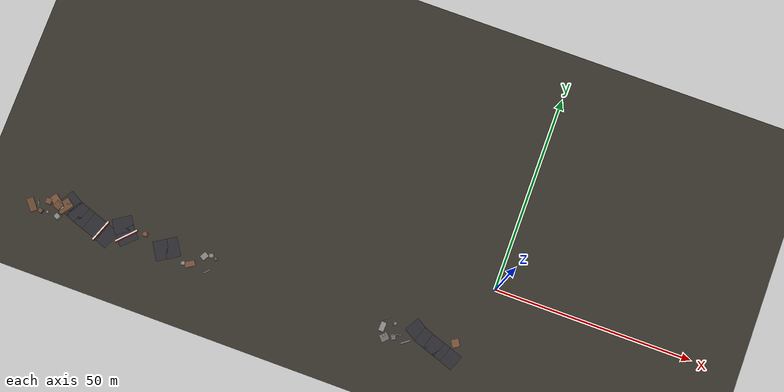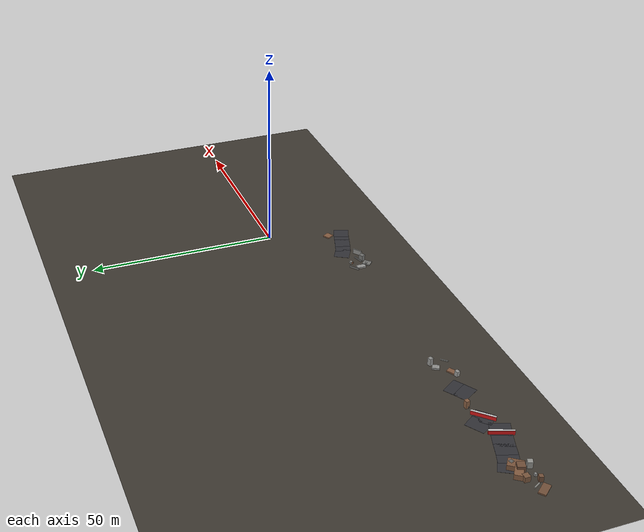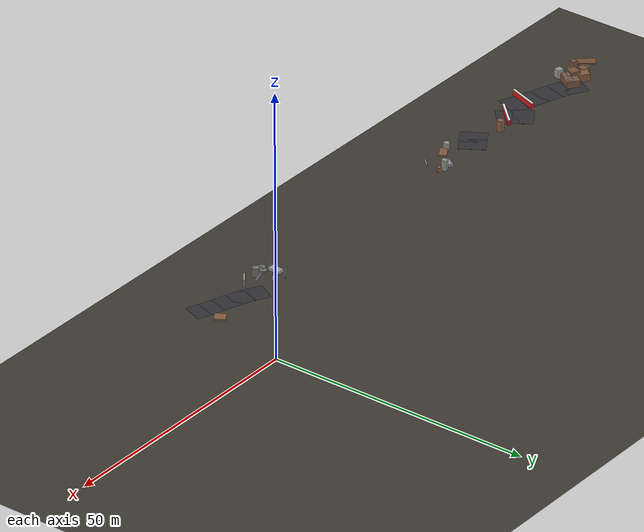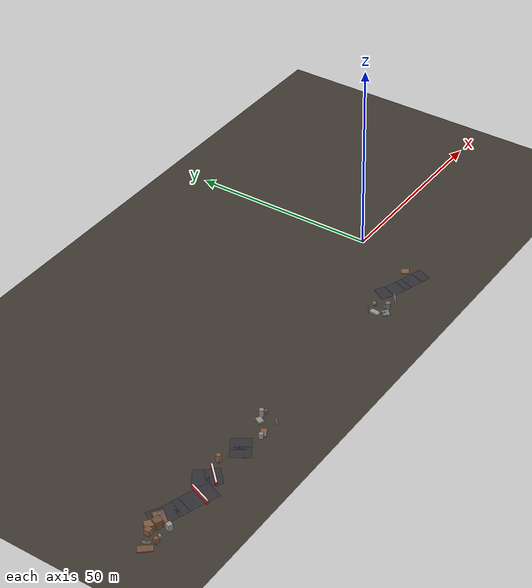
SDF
<sdf version="1.6">
 <world name="navitas_arena">
  <model name="ground_plane">
   <static>true</static>
   <link name="link">
    <collision name="collision">
     <geometry><plane><normal>0 0 1</normal><size>400 400</size></plane></geometry>
     <surface><friction><ode><mu>0.620</mu><mu2>0.620</mu2></ode></friction></surface>
    </collision>
    <visual name="visual">
     <cast_shadows>false</cast_shadows>
     <geometry><plane><normal>0 0 1</normal><size>400 400</size></plane></geometry>
     <material><ambient>0.250 0.230 0.200 1</ambient><diffuse>0.250 0.230 0.200 1</diffuse></material>
    </visual>
   </link>
  </model>
  <model name="road_kolay_1_2">
   <static>true</static>
   <pose>-93.854 -20.087 0.040 0 0 2.760</pose>
   <link name="link">
    <collision name="col"><geometry><box><size>4.055 4.920 0.020</size></box></geometry></collision>
    <visual name="vis">
     <geometry><box><size>4.055 4.920 0.020</size></box></geometry>
     <material><ambient>0.20 0.20 0.22 1</ambient><diffuse>0.20 0.20 0.22 1</diffuse></material>
    </visual>
   </link>
  </model>
  <model name="road_kolay_1_3">
   <static>true</static>
   <pose>-97.048 -18.901 0.040 0 0 2.808</pose>
   <link name="link">
    <collision name="col"><geometry><box><size>4.562 4.920 0.020</size></box></geometry></collision>
    <visual name="vis">
     <geometry><box><size>4.562 4.920 0.020</size></box></geometry>
     <material><ambient>0.20 0.20 0.22 1</ambient><diffuse>0.20 0.20 0.22 1</diffuse></material>
    </visual>
   </link>
  </model>
  <model name="road_kolay_1_4">
   <static>true</static>
   <pose>-100.051 -17.886 0.040 0 0 2.825</pose>
   <link name="link">
    <collision name="col"><geometry><box><size>3.578 4.920 0.020</size></box></geometry></collision>
    <visual name="vis">
     <geometry><box><size>3.578 4.920 0.020</size></box></geometry>
     <material><ambient>0.20 0.20 0.22 1</ambient><diffuse>0.20 0.20 0.22 1</diffuse></material>
    </visual>
   </link>
  </model>
  <model name="road_kolay_1_5">
   <static>true</static>
   <pose>-102.527 -17.017 0.040 0 0 2.783</pose>
   <link name="link">
    <collision name="col"><geometry><box><size>3.471 4.920 0.020</size></box></geometry></collision>
    <visual name="vis">
     <geometry><box><size>3.471 4.920 0.020</size></box></geometry>
     <material><ambient>0.20 0.20 0.22 1</ambient><diffuse>0.20 0.20 0.22 1</diffuse></material>
    </visual>
   </link>
  </model>
  <model name="road_kolay_1_6">
   <static>true</static>
   <pose>-105.099 -15.783 0.040 0 0 2.622</pose>
   <link name="link">
    <collision name="col"><geometry><box><size>4.053 4.920 0.020</size></box></geometry></collision>
    <visual name="vis">
     <geometry><box><size>4.053 4.920 0.020</size></box></geometry>
     <material><ambient>0.20 0.20 0.22 1</ambient><diffuse>0.20 0.20 0.22 1</diffuse></material>
    </visual>
   </link>
  </model>
  <model name="road_kolay_2_1">
   <static>true</static>
   <pose>-89.084 -18.484 0.040 0 0 2.331</pose>
   <link name="link">
    <collision name="col"><geometry><box><size>3.704 4.920 0.020</size></box></geometry></collision>
    <visual name="vis">
     <geometry><box><size>3.704 4.920 0.020</size></box></geometry>
     <material><ambient>0.20 0.20 0.22 1</ambient><diffuse>0.20 0.20 0.22 1</diffuse></material>
    </visual>
   </link>
  </model>
  <model name="road_kolay_2_2">
   <static>true</static>
   <pose>-90.859 -16.234 0.040 0 0 2.151</pose>
   <link name="link">
    <collision name="col"><geometry><box><size>3.851 4.920 0.020</size></box></geometry></collision>
    <visual name="vis">
     <geometry><box><size>3.851 4.920 0.020</size></box></geometry>
     <material><ambient>0.20 0.20 0.22 1</ambient><diffuse>0.20 0.20 0.22 1</diffuse></material>
    </visual>
   </link>
  </model>
  <model name="road_kolay_3_2">
   <static>true</static>
   <pose>-79.824 -18.833 0.040 0 0 0.547</pose>
   <link name="link">
    <collision name="col"><geometry><box><size>3.463 4.920 0.020</size></box></geometry></collision>
    <visual name="vis">
     <geometry><box><size>3.463 4.920 0.020</size></box></geometry>
     <material><ambient>0.20 0.20 0.22 1</ambient><diffuse>0.20 0.20 0.22 1</diffuse></material>
    </visual>
   </link>
  </model>
  <model name="road_kolay_3_3">
   <static>true</static>
   <pose>-77.616 -17.444 0.040 0 0 0.575</pose>
   <link name="link">
    <collision name="col"><geometry><box><size>3.554 4.920 0.020</size></box></geometry></collision>
    <visual name="vis">
     <geometry><box><size>3.554 4.920 0.020</size></box></geometry>
     <material><ambient>0.20 0.20 0.22 1</ambient><diffuse>0.20 0.20 0.22 1</diffuse></material>
    </visual>
   </link>
  </model>
  <model name="bar_kolay_1">
   <static>true</static>
   <pose>-95.318 -19.500 0.500 0 0 4.353</pose>
   <link name="link">
    <collision name="col"><geometry><box><size>5.920 0.500 1.000</size></box></geometry></collision>
    <visual name="vis">
     <geometry><box><size>5.920 0.500 1.000</size></box></geometry>
     <material><ambient>0.85 0.10 0.10 1</ambient><diffuse>0.85 0.10 0.10 1</diffuse></material>
    </visual>
   </link>
  </model>
  <model name="bar_kolay_1b">
   <static>true</static>
   <pose>-95.318 -19.500 1.000 0 0 4.353</pose>
   <link name="link">
    <collision name="col"><geometry><box><size>5.920 0.400 0.300</size></box></geometry></collision>
    <visual name="vis">
     <geometry><box><size>5.920 0.400 0.300</size></box></geometry>
     <material><ambient>0.95 0.95 0.95 1</ambient><diffuse>0.95 0.95 0.95 1</diffuse></material>
    </visual>
   </link>
  </model>
  <model name="blk_kolay_1_0_0">
   <static>true</static>
   <pose>-105.794 -16.909 0.675 0 0 0.937</pose>
   <link name="link">
    <collision name="col"><geometry><box><size>3.640 2.537 1.350</size></box></geometry></collision>
    <visual name="vis">
     <geometry><box><size>3.640 2.537 1.350</size></box></geometry>
     <material><ambient>0.49 0.34 0.24 1</ambient><diffuse>0.49 0.34 0.24 1</diffuse></material>
    </visual>
   </link>
  </model>
  <model name="blk_kolay_1_0_1">
   <static>true</static>
   <pose>-108.064 -16.394 0.675 0 0 2.525</pose>
   <link name="link">
    <collision name="col"><geometry><box><size>3.129 1.948 1.350</size></box></geometry></collision>
    <visual name="vis">
     <geometry><box><size>3.129 1.948 1.350</size></box></geometry>
     <material><ambient>0.53 0.37 0.26 1</ambient><diffuse>0.53 0.37 0.26 1</diffuse></material>
    </visual>
   </link>
  </model>
  <model name="blk_kolay_1_0_2">
   <static>true</static>
   <pose>-106.714 -17.453 0.803 0 0 0.864</pose>
   <link name="link">
    <collision name="col"><geometry><box><size>1.532 1.532 1.606</size></box></geometry></collision>
    <visual name="vis">
     <geometry><box><size>1.532 1.532 1.606</size></box></geometry>
     <material><ambient>0.58 0.58 0.57 1</ambient><diffuse>0.58 0.58 0.57 1</diffuse></material>
    </visual>
   </link>
  </model>
  <model name="blk_kolay_1_0_3">
   <static>true</static>
   <pose>-107.128 -17.293 1.004 0 0 1.210</pose>
   <link name="link">
    <collision name="col"><geometry><box><size>1.865 1.865 2.009</size></box></geometry></collision>
    <visual name="vis">
     <geometry><box><size>1.865 1.865 2.009</size></box></geometry>
     <material><ambient>0.46 0.32 0.23 1</ambient><diffuse>0.46 0.32 0.23 1</diffuse></material>
    </visual>
   </link>
  </model>
  <model name="blk_kolay_1_0_5">
   <static>true</static>
   <pose>-104.972 -16.290 0.675 0 0 1.908</pose>
   <link name="link">
    <collision name="col"><geometry><box><size>0.911 0.911 1.350</size></box></geometry></collision>
    <visual name="vis">
     <geometry><box><size>0.911 0.911 1.350</size></box></geometry>
     <material><ambient>0.41 0.41 0.40 1</ambient><diffuse>0.41 0.41 0.40 1</diffuse></material>
    </visual>
   </link>
  </model>
  <model name="bar_kolay_2">
   <static>true</static>
   <pose>-88.970 -18.504 0.500 0 0 3.948</pose>
   <link name="link">
    <collision name="col"><geometry><box><size>5.920 0.500 1.000</size></box></geometry></collision>
    <visual name="vis">
     <geometry><box><size>5.920 0.500 1.000</size></box></geometry>
     <material><ambient>0.85 0.10 0.10 1</ambient><diffuse>0.85 0.10 0.10 1</diffuse></material>
    </visual>
   </link>
  </model>
  <model name="bar_kolay_2b">
   <static>true</static>
   <pose>-88.970 -18.504 1.000 0 0 3.948</pose>
   <link name="link">
    <collision name="col"><geometry><box><size>5.920 0.400 0.300</size></box></geometry></collision>
    <visual name="vis">
     <geometry><box><size>5.920 0.400 0.300</size></box></geometry>
     <material><ambient>0.95 0.95 0.95 1</ambient><diffuse>0.95 0.95 0.95 1</diffuse></material>
    </visual>
   </link>
  </model>
  <model name="deb_kolay_31">
   <static>true</static>
   <pose>-69.338 -16.636 0.248 0 0 1.062</pose>
   <link name="link">
    <collision name="col"><geometry><box><size>1.803 1.399 0.496</size></box></geometry></collision>
    <visual name="vis">
     <geometry><box><size>1.803 1.399 0.496</size></box></geometry>
     <material><ambient>0.58 0.58 0.57 1</ambient><diffuse>0.58 0.58 0.57 1</diffuse></material>
    </visual>
   </link>
  </model>
  <model name="deb_kolay_36">
   <static>true</static>
   <pose>-109.332 -19.619 0.330 0 0 0.052</pose>
   <link name="link">
    <collision name="col"><geometry><box><size>0.570 0.570 0.661</size></box></geometry></collision>
    <visual name="vis">
     <geometry><box><size>0.570 0.570 0.661</size></box></geometry>
     <material><ambient>0.56 0.56 0.55 1</ambient><diffuse>0.56 0.56 0.55 1</diffuse></material>
    </visual>
   </link>
  </model>
  <model name="deb_kolay_48">
   <static>true</static>
   <pose>-106.480 -19.882 0.819 0 0 1.182</pose>
   <link name="link">
    <collision name="col"><geometry><box><size>1.207 1.207 1.639</size></box></geometry></collision>
    <visual name="vis">
     <geometry><box><size>1.207 1.207 1.639</size></box></geometry>
     <material><ambient>0.60 0.60 0.58 1</ambient><diffuse>0.60 0.60 0.58 1</diffuse></material>
    </visual>
   </link>
  </model>
  <model name="deb_kolay_59">
   <static>true</static>
   <pose>-113.701 -19.203 0.170 0 0 2.259</pose>
   <link name="link">
    <collision name="col"><geometry><box><size>3.441 1.771 0.340</size></box></geometry></collision>
    <visual name="vis">
     <geometry><box><size>3.441 1.771 0.340</size></box></geometry>
     <material><ambient>0.46 0.32 0.23 1</ambient><diffuse>0.46 0.32 0.23 1</diffuse></material>
    </visual>
   </link>
  </model>
  <model name="deb_kolay_80">
   <static>true</static>
   <pose>-84.674 -16.614 1.017 0 0 1.670</pose>
   <link name="link">
    <collision name="col"><geometry><box><size>0.990 0.990 2.033</size></box></geometry></collision>
    <visual name="vis">
     <geometry><box><size>0.990 0.990 2.033</size></box></geometry>
     <material><ambient>0.54 0.38 0.27 1</ambient><diffuse>0.54 0.38 0.27 1</diffuse></material>
    </visual>
   </link>
  </model>
  <model name="deb_kolay_102">
   <static>true</static>
   <pose>-84.962 -16.892 0.285 0 0 2.060</pose>
   <link name="link">
    <collision name="col"><geometry><box><size>0.428 0.428 0.570</size></box></geometry></collision>
    <visual name="vis">
     <geometry><box><size>0.428 0.428 0.570</size></box></geometry>
     <material><ambient>0.40 0.40 0.40 1</ambient><diffuse>0.40 0.40 0.40 1</diffuse></material>
    </visual>
   </link>
  </model>
  <model name="deb_kolay_106">
   <static>true</static>
   <pose>-67.648 -15.991 0.980 0 0 0.348</pose>
   <link name="link">
    <collision name="col"><geometry><box><size>0.945 0.945 1.960</size></box></geometry></collision>
    <visual name="vis">
     <geometry><box><size>0.945 0.945 1.960</size></box></geometry>
     <material><ambient>0.58 0.58 0.57 1</ambient><diffuse>0.58 0.58 0.57 1</diffuse></material>
    </visual>
   </link>
  </model>
  <model name="deb_kolay_112">
   <static>true</static>
   <pose>-66.451 -16.335 0.466 0 0 2.587</pose>
   <link name="link">
    <collision name="col"><geometry><box><size>0.703 0.703 0.933</size></box></geometry></collision>
    <visual name="vis">
     <geometry><box><size>0.703 0.703 0.933</size></box></geometry>
     <material><ambient>0.51 0.36 0.25 1</ambient><diffuse>0.51 0.36 0.25 1</diffuse></material>
    </visual>
   </link>
  </model>
  <model name="deb_kolay_126">
   <static>true</static>
   <pose>-110.907 -19.897 0.679 0 0 2.884</pose>
   <link name="link">
    <collision name="col"><geometry><box><size>1.021 1.021 1.357</size></box></geometry></collision>
    <visual name="vis">
     <geometry><box><size>1.021 1.021 1.357</size></box></geometry>
     <material><ambient>0.47 0.33 0.24 1</ambient><diffuse>0.47 0.33 0.24 1</diffuse></material>
    </visual>
   </link>
  </model>
  <model name="deb_kolay_131">
   <static>true</static>
   <pose>-112.225 -18.305 0.214 0 0 2.056</pose>
   <link name="link">
    <collision name="col"><geometry><box><size>1.820 0.200 0.428</size></box></geometry></collision>
    <visual name="vis">
     <geometry><box><size>1.820 0.200 0.428</size></box></geometry>
     <material><ambient>0.62 0.62 0.60 1</ambient><diffuse>0.62 0.62 0.60 1</diffuse></material>
    </visual>
   </link>
  </model>
  <model name="deb_kolay_135">
   <static>true</static>
   <pose>-109.861 -17.037 0.716 0 0 1.578</pose>
   <link name="link">
    <collision name="col"><geometry><box><size>1.417 1.417 1.432</size></box></geometry></collision>
    <visual name="vis">
     <geometry><box><size>1.417 1.417 1.432</size></box></geometry>
     <material><ambient>0.49 0.35 0.25 1</ambient><diffuse>0.49 0.35 0.25 1</diffuse></material>
    </visual>
   </link>
  </model>
  <model name="deb_kolay_141">
   <static>true</static>
   <pose>-67.435 -19.880 0.133 0 0 0.810</pose>
   <link name="link">
    <collision name="col"><geometry><box><size>1.917 0.227 0.265</size></box></geometry></collision>
    <visual name="vis">
     <geometry><box><size>1.917 0.227 0.265</size></box></geometry>
     <material><ambient>0.58 0.58 0.56 1</ambient><diffuse>0.58 0.58 0.56 1</diffuse></material>
    </visual>
   </link>
  </model>
  <model name="deb_kolay_173">
   <static>true</static>
   <pose>-72.105 -19.632 0.167 0 0 0.535</pose>
   <link name="link">
    <collision name="col"><geometry><box><size>2.590 1.412 0.334</size></box></geometry></collision>
    <visual name="vis">
     <geometry><box><size>2.590 1.412 0.334</size></box></geometry>
     <material><ambient>0.52 0.36 0.26 1</ambient><diffuse>0.52 0.36 0.26 1</diffuse></material>
    </visual>
   </link>
  </model>
  <model name="chic_kolay_0">
   <static>true</static>
   <pose>-84.655 -16.536 0.675 0 0 0.056</pose>
   <link name="link">
    <collision name="col"><geometry><box><size>0.700 0.700 1.350</size></box></geometry></collision>
    <visual name="vis">
     <geometry><box><size>0.700 0.700 1.350</size></box></geometry>
     <material><ambient>0.40 0.40 0.40 1</ambient><diffuse>0.40 0.40 0.40 1</diffuse></material>
    </visual>
   </link>
  </model>
  <model name="chic_kolay_1">
   <static>true</static>
   <pose>-73.566 -20.021 0.675 0 0 0.338</pose>
   <link name="link">
    <collision name="col"><geometry><box><size>0.911 0.911 1.350</size></box></geometry></collision>
    <visual name="vis">
     <geometry><box><size>0.911 0.911 1.350</size></box></geometry>
     <material><ambient>0.59 0.59 0.58 1</ambient><diffuse>0.59 0.59 0.58 1</diffuse></material>
    </visual>
   </link>
  </model>
  <model name="road_orta_1_3">
   <static>true</static>
   <pose>-4.557 -19.556 0.040 0 0 2.781</pose>
   <link name="link">
    <collision name="col"><geometry><box><size>3.472 4.100 0.020</size></box></geometry></collision>
    <visual name="vis">
     <geometry><box><size>3.472 4.100 0.020</size></box></geometry>
     <material><ambient>0.20 0.20 0.22 1</ambient><diffuse>0.20 0.20 0.22 1</diffuse></material>
    </visual>
   </link>
  </model>
  <model name="road_orta_1_4">
   <static>true</static>
   <pose>-6.985 -18.702 0.040 0 0 2.826</pose>
   <link name="link">
    <collision name="col"><geometry><box><size>3.477 4.100 0.020</size></box></geometry></collision>
    <visual name="vis">
     <geometry><box><size>3.477 4.100 0.020</size></box></geometry>
     <material><ambient>0.20 0.20 0.22 1</ambient><diffuse>0.20 0.20 0.22 1</diffuse></material>
    </visual>
   </link>
  </model>
  <model name="road_orta_1_5">
   <static>true</static>
   <pose>-9.498 -17.886 0.040 0 0 2.829</pose>
   <link name="link">
    <collision name="col"><geometry><box><size>3.608 4.100 0.020</size></box></geometry></collision>
    <visual name="vis">
     <geometry><box><size>3.608 4.100 0.020</size></box></geometry>
     <material><ambient>0.20 0.20 0.22 1</ambient><diffuse>0.20 0.20 0.22 1</diffuse></material>
    </visual>
   </link>
  </model>
  <model name="road_orta_1_6">
   <static>true</static>
   <pose>-11.997 -17.017 0.040 0 0 2.784</pose>
   <link name="link">
    <collision name="col"><geometry><box><size>3.485 4.100 0.020</size></box></geometry></collision>
    <visual name="vis">
     <geometry><box><size>3.485 4.100 0.020</size></box></geometry>
     <material><ambient>0.20 0.20 0.22 1</ambient><diffuse>0.20 0.20 0.22 1</diffuse></material>
    </visual>
   </link>
  </model>
  <model name="road_orta_1_7">
   <static>true</static>
   <pose>-14.571 -15.783 0.040 0 0 2.620</pose>
   <link name="link">
    <collision name="col"><geometry><box><size>4.044 4.100 0.020</size></box></geometry></collision>
    <visual name="vis">
     <geometry><box><size>4.044 4.100 0.020</size></box></geometry>
     <material><ambient>0.20 0.20 0.22 1</ambient><diffuse>0.20 0.20 0.22 1</diffuse></material>
    </visual>
   </link>
  </model>
  <model name="deb_orta_7">
   <static>true</static>
   <pose>-4.780 -15.579 0.168 0 0 2.107</pose>
   <link name="link">
    <collision name="col"><geometry><box><size>1.996 1.898 0.336</size></box></geometry></collision>
    <visual name="vis">
     <geometry><box><size>1.996 1.898 0.336</size></box></geometry>
     <material><ambient>0.53 0.37 0.26 1</ambient><diffuse>0.53 0.37 0.26 1</diffuse></material>
    </visual>
   </link>
  </model>
  <model name="deb_orta_8">
   <static>true</static>
   <pose>-20.200 -16.363 0.251 0 0 0.911</pose>
   <link name="link">
    <collision name="col"><geometry><box><size>0.576 0.576 0.503</size></box></geometry></collision>
    <visual name="vis">
     <geometry><box><size>0.576 0.576 0.503</size></box></geometry>
     <material><ambient>0.52 0.36 0.26 1</ambient><diffuse>0.52 0.36 0.26 1</diffuse></material>
    </visual>
   </link>
  </model>
  <model name="deb_orta_31">
   <static>true</static>
   <pose>-19.349 -19.475 0.806 0 0 0.464</pose>
   <link name="link">
    <collision name="col"><geometry><box><size>1.158 1.158 1.613</size></box></geometry></collision>
    <visual name="vis">
     <geometry><box><size>1.158 1.158 1.613</size></box></geometry>
     <material><ambient>0.45 0.45 0.44 1</ambient><diffuse>0.45 0.45 0.44 1</diffuse></material>
    </visual>
   </link>
  </model>
  <model name="deb_orta_49">
   <static>true</static>
   <pose>-22.671 -15.834 0.256 0 0 0.653</pose>
   <link name="link">
    <collision name="col"><geometry><box><size>2.838 0.153 0.512</size></box></geometry></collision>
    <visual name="vis">
     <geometry><box><size>2.838 0.153 0.512</size></box></geometry>
     <material><ambient>0.46 0.46 0.45 1</ambient><diffuse>0.46 0.46 0.45 1</diffuse></material>
    </visual>
   </link>
  </model>
  <model name="deb_orta_71">
   <static>true</static>
   <pose>-18.877 -18.559 0.190 0 0 0.306</pose>
   <link name="link">
    <collision name="col"><geometry><box><size>2.802 0.239 0.380</size></box></geometry></collision>
    <visual name="vis">
     <geometry><box><size>2.802 0.239 0.380</size></box></geometry>
     <material><ambient>0.48 0.48 0.47 1</ambient><diffuse>0.48 0.48 0.47 1</diffuse></material>
    </visual>
   </link>
  </model>
  <model name="deb_orta_105">
   <static>true</static>
   <pose>-20.030 -16.059 0.338 0 0 0.204</pose>
   <link name="link">
    <collision name="col"><geometry><box><size>0.702 0.702 0.675</size></box></geometry></collision>
    <visual name="vis">
     <geometry><box><size>0.702 0.702 0.675</size></box></geometry>
     <material><ambient>0.55 0.55 0.54 1</ambient><diffuse>0.55 0.55 0.54 1</diffuse></material>
    </visual>
   </link>
  </model>
  <model name="deb_orta_119">
   <static>true</static>
   <pose>-22.701 -17.831 0.223 0 0 1.525</pose>
   <link name="link">
    <collision name="col"><geometry><box><size>2.338 1.309 0.447</size></box></geometry></collision>
    <visual name="vis">
     <geometry><box><size>2.338 1.309 0.447</size></box></geometry>
     <material><ambient>0.61 0.61 0.60 1</ambient><diffuse>0.61 0.61 0.60 1</diffuse></material>
    </visual>
   </link>
  </model>
  <model name="deb_orta_211">
   <static>true</static>
   <pose>-21.724 -19.733 0.256 0 0 2.712</pose>
   <link name="link">
    <collision name="col"><geometry><box><size>0.589 0.589 0.512</size></box></geometry></collision>
    <visual name="vis">
     <geometry><box><size>0.589 0.589 0.512</size></box></geometry>
     <material><ambient>0.53 0.53 0.52 1</ambient><diffuse>0.53 0.53 0.52 1</diffuse></material>
    </visual>
   </link>
  </model>
  <model name="deb_orta_227">
   <static>true</static>
   <pose>-21.439 -20.116 0.140 0 0 2.377</pose>
   <link name="link">
    <collision name="col"><geometry><box><size>1.876 2.110 0.279</size></box></geometry></collision>
    <visual name="vis">
     <geometry><box><size>1.876 2.110 0.279</size></box></geometry>
     <material><ambient>0.47 0.47 0.46 1</ambient><diffuse>0.47 0.47 0.46 1</diffuse></material>
    </visual>
   </link>
  </model>
  <model name="chic_orta_2">
   <static>true</static>
   <pose>-16.195 -19.478 0.675 0 0 0.642</pose>
   <link name="link">
    <collision name="col"><geometry><box><size>2.475 0.321 1.350</size></box></geometry></collision>
    <visual name="vis">
     <geometry><box><size>2.475 0.321 1.350</size></box></geometry>
     <material><ambient>0.56 0.56 0.55 1</ambient><diffuse>0.56 0.56 0.55 1</diffuse></material>
    </visual>
   </link>
  </model>
 </world>
</sdf>
